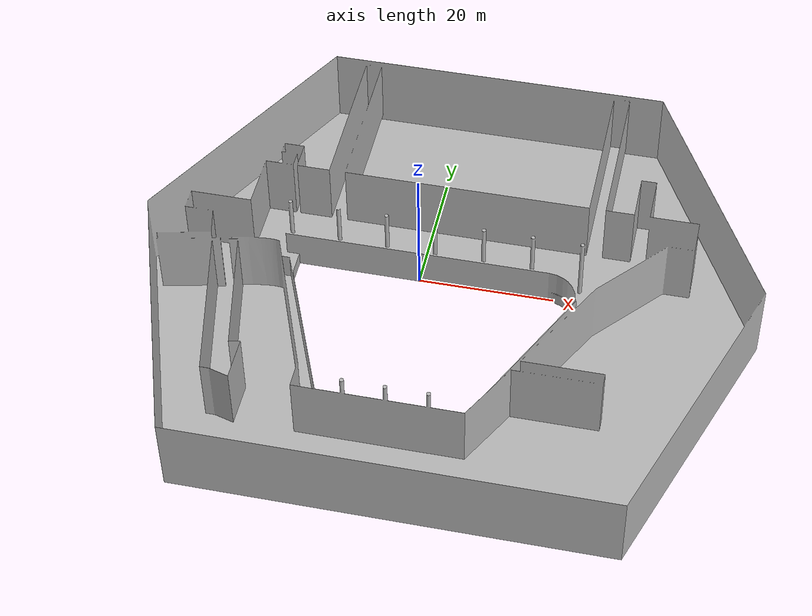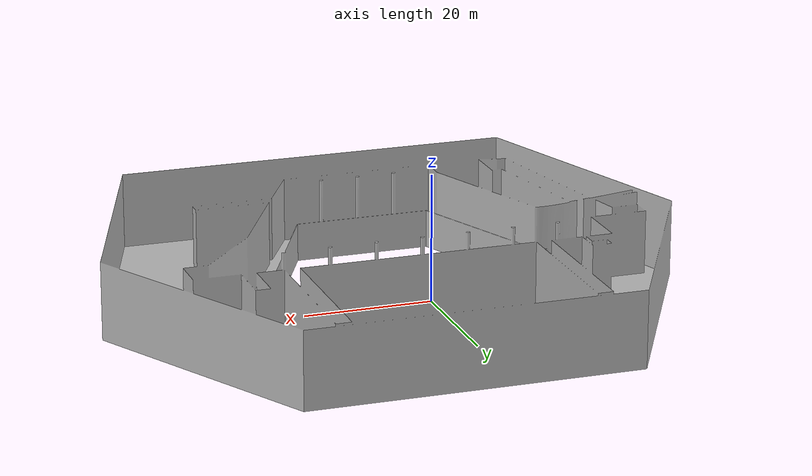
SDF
<?xml version="1.0"?>
<sdf version="1.6">
  <model name="campus_map">
    <static>true</static>
    <link name="campus_map_link">
      <collision name="campus_map_collision">
        <geometry>
          <mesh>
            <uri>model://campus_map/meshes/map.STL</uri>
            <scale>1 1 1</scale>
          </mesh>
        </geometry>
      </collision>
      <visual name="campus_map_visual">
        <geometry>
          <mesh>
            <uri>model://campus_map/meshes/map.obj</uri>
            <scale>1 1 1</scale>
          </mesh>
        </geometry>
      </visual>
    </link>
  </model>
</sdf>
